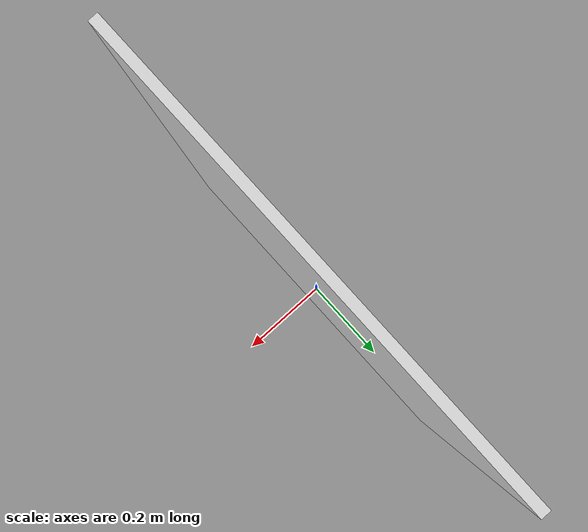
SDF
<?xml version='1.0' encoding='utf-8'?>
<sdf version='1.10'>
  <model name='wall'>
    <pose>0 0 0 0 0 0</pose>
    <link name='box_link'>
      <collision name='box_collision'>
        <geometry>
          <box>
            <size>0.02 1 1.5</size>
          </box>
        </geometry>
        <surface>
          <friction>
            <ode/>
          </friction>
          <bounce/>
          <contact/>
        </surface>
      </collision>
      <visual name='box_visual'>
        <geometry>
          <box>
            <size>0.02 1 1.5</size>
          </box>
        </geometry>
        <material>
          <ambient>0.827 0.827 0.827 1.0</ambient>
          <diffuse>0.827 0.827 0.827 1.0</diffuse>
          <specular>0.827 0.827 0.827 1.0</specular>
        </material>
        <cast_shadows>false</cast_shadows>
      </visual>
      <pose>0 0 0 0 0 0</pose>
      <enable_wind>false</enable_wind>
    </link>
    <static>true</static>
    <self_collide>false</self_collide>
  </model>
</sdf>
